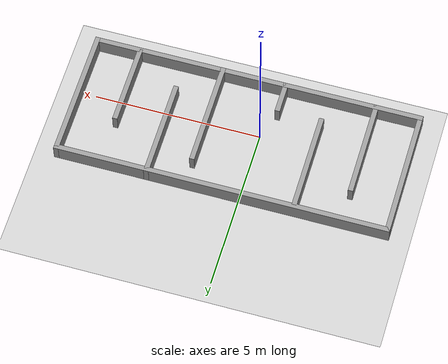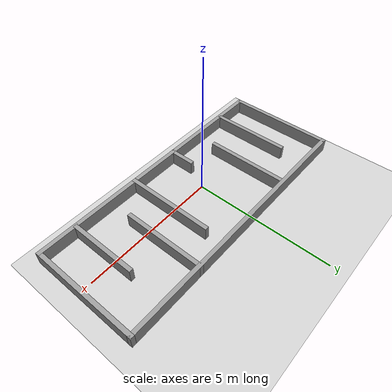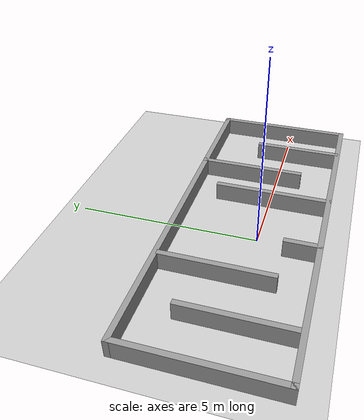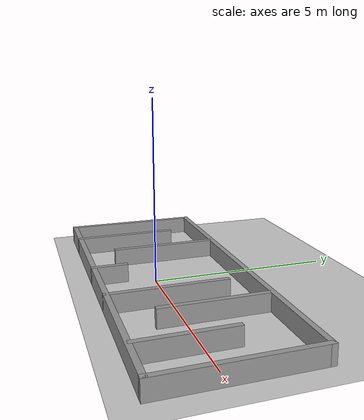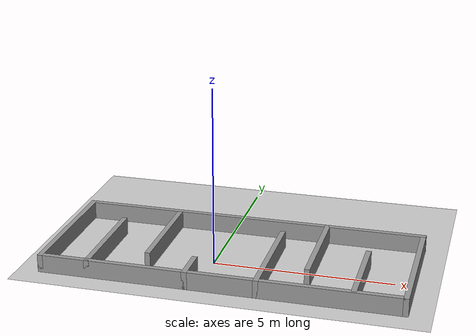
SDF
<sdf version="1.7">
 <world name="default">
  <light name="sun" type="directional">
   <pose>0 0 10 0 -0 0</pose>
   <diffuse>0.8 0.8 0.8 1</diffuse>
   <specular>0.2 0.2 0.2 1</specular>
   <attenuation>
    <range>1000</range>
    <constant>0.9</constant>
    <linear>0.01</linear>
    <quadratic>0.001</quadratic>
   </attenuation>
   <direction>-0.5 0.1 -0.9</direction>
   <spot><inner_angle>0</inner_angle><outer_angle>0</outer_angle><falloff>0</falloff></spot>
  </light>
  <model name="ground_plane">
   <static>1</static>
   <link name="link">
    <collision name="collision">
     <geometry><plane><normal>0 0 1</normal><size>100 100</size></plane></geometry>
     <surface><friction><ode><mu>100</mu><mu2>50</mu2></ode></friction></surface>
    </collision>
    <visual name="visual">
     <cast_shadows>0</cast_shadows>
     <geometry><plane><normal>0 0 1</normal><size>100 100</size></plane></geometry>
     <material>
      <script><uri>file://media/materials/scripts/gazebo.material</uri><name>Gazebo/Grey</name></script>
     </material>
    </visual>
   </link>
  </model>
  <gravity>0 0 -9.8</gravity>
  <magnetic_field>6e-06 2.3e-05 -4.2e-05</magnetic_field>
  <atmosphere type="adiabatic"/>
  <physics type="ode">
   <max_step_size>0.001</max_step_size>
   <real_time_factor>1</real_time_factor>
   <real_time_update_rate>1000</real_time_update_rate>
  </physics>
  <scene><ambient>0.4 0.4 0.4 1</ambient><background>0.7 0.7 0.7 1</background><shadows>1</shadows></scene>
  <audio><device>default</device></audio>
  <spherical_coordinates>
   <surface_model>EARTH_WGS84</surface_model>
   <latitude_deg>0</latitude_deg>
   <longitude_deg>0</longitude_deg>
   <elevation>0</elevation>
   <heading_deg>0</heading_deg>
  </spherical_coordinates>
  <model name="maze">
   <pose>0.543355 0.628898 0 0 -0 0</pose>
   <link name="Wall_0">
    <collision name="Wall_0_Collision">
     <geometry><box><size>4 0.15 0.5</size></box></geometry>
     <pose>0 0 0.25 0 -0 0</pose>
    </collision>
    <visual name="Wall_0_Visual">
     <pose>0 0 0.25 0 -0 0</pose>
     <geometry><box><size>4 0.15 0.5</size></box></geometry>
     <material>
      <script><uri>file://media/materials/scripts/gazebo.material</uri><name>Gazebo/Grey</name></script>
      <ambient>1 1 1 1</ambient>
     </material>
     <meta><layer>0</layer></meta>
    </visual>
    <pose>-4.925 -0.3425 0 0 -0 -1.5708</pose>
   </link>
   <link name="Wall_1">
    <collision name="Wall_1_Collision">
     <geometry><box><size>10 0.15 0.5</size></box></geometry>
     <pose>0 0 0.25 0 -0 0</pose>
    </collision>
    <visual name="Wall_1_Visual">
     <pose>0 0 0.25 0 -0 0</pose>
     <geometry><box><size>10 0.15 0.5</size></box></geometry>
     <material>
      <script><uri>file://media/materials/scripts/gazebo.material</uri><name>Gazebo/Grey</name></script>
      <ambient>1 1 1 1</ambient>
     </material>
     <meta><layer>0</layer></meta>
    </visual>
    <pose>-0 -2.2675 0 0 -0 0</pose>
   </link>
   <link name="Wall_10">
    <collision name="Wall_10_Collision">
     <geometry><box><size>2.5 0.15 0.5</size></box></geometry>
     <pose>0 0 0.25 0 -0 0</pose>
    </collision>
    <visual name="Wall_10_Visual">
     <pose>0 0 0.25 0 -0 0</pose>
     <geometry><box><size>2.5 0.15 0.5</size></box></geometry>
     <material>
      <script><uri>file://media/materials/scripts/gazebo.material</uri><name>Gazebo/Grey</name></script>
      <ambient>1 1 1 1</ambient>
     </material>
     <meta><layer>0</layer></meta>
    </visual>
    <pose>3.595 -1.0325 0 0 -0 1.5708</pose>
   </link>
   <link name="Wall_12">
    <collision name="Wall_12_Collision">
     <geometry><box><size>3 0.15 0.5</size></box></geometry>
     <pose>0 0 0.25 0 -0 0</pose>
    </collision>
    <visual name="Wall_12_Visual">
     <pose>0 0 0.25 0 -0 0</pose>
     <geometry><box><size>3 0.15 0.5</size></box></geometry>
     <material>
      <script><uri>file://media/materials/scripts/gazebo.material</uri><name>Gazebo/Grey</name></script>
      <ambient>1 1 1 1</ambient>
     </material>
     <meta><layer>0</layer></meta>
    </visual>
    <pose>2.205 0.1575 0 0 -0 -1.5708</pose>
   </link>
   <link name="Wall_14">
    <collision name="Wall_14_Collision">
     <geometry><box><size>3.25 0.15 0.5</size></box></geometry>
     <pose>0 0 0.25 0 -0 0</pose>
    </collision>
    <visual name="Wall_14_Visual">
     <pose>0 0 0.25 0 -0 0</pose>
     <geometry><box><size>3.25 0.15 0.5</size></box></geometry>
     <material>
      <script><uri>file://media/materials/scripts/gazebo.material</uri><name>Gazebo/Grey</name></script>
      <ambient>1 1 1 1</ambient>
     </material>
     <meta><layer>0</layer></meta>
    </visual>
    <pose>1.055 -0.7175 0 0 -0 1.5708</pose>
   </link>
   <link name="Wall_18">
    <collision name="Wall_18_Collision">
     <geometry><box><size>1 0.15 0.5</size></box></geometry>
     <pose>0 0 0.25 0 -0 0</pose>
    </collision>
    <visual name="Wall_18_Visual">
     <pose>0 0 0.25 0 -0 0</pose>
     <geometry><box><size>1 0.15 0.5</size></box></geometry>
     <material>
      <script><uri>file://media/materials/scripts/gazebo.material</uri><name>Gazebo/Grey</name></script>
      <ambient>1 1 1 1</ambient>
     </material>
     <meta><layer>0</layer></meta>
    </visual>
    <pose>-0.865 -1.8425 0 0 -0 1.5708</pose>
   </link>
   <link name="Wall_2">
    <collision name="Wall_2_Collision">
     <geometry><box><size>4 0.15 0.5</size></box></geometry>
     <pose>0 0 0.25 0 -0 0</pose>
    </collision>
    <visual name="Wall_2_Visual">
     <pose>0 0 0.25 0 -0 0</pose>
     <geometry><box><size>4 0.15 0.5</size></box></geometry>
     <material>
      <script><uri>file://media/materials/scripts/gazebo.material</uri><name>Gazebo/Grey</name></script>
      <ambient>1 1 1 1</ambient>
     </material>
     <meta><layer>0</layer></meta>
    </visual>
    <pose>4.925 -0.3425 0 0 -0 1.5708</pose>
   </link>
   <link name="Wall_3">
    <collision name="Wall_3_Collision">
     <geometry><box><size>10 0.15 0.5</size></box></geometry>
     <pose>0 0 0.25 0 -0 0</pose>
    </collision>
    <visual name="Wall_3_Visual">
     <pose>0 0 0.25 0 -0 0</pose>
     <geometry><box><size>10 0.15 0.5</size></box></geometry>
     <material>
      <script><uri>file://media/materials/scripts/gazebo.material</uri><name>Gazebo/Grey</name></script>
      <ambient>1 1 1 1</ambient>
     </material>
     <meta><layer>0</layer></meta>
    </visual>
    <pose>-0 1.5825 0 0 -0 3.14159</pose>
   </link>
   <link name="Wall_5">
    <collision name="Wall_5_Collision">
     <geometry><box><size>3 0.15 0.5</size></box></geometry>
     <pose>0 0 0.25 0 -0 0</pose>
    </collision>
    <visual name="Wall_5_Visual">
     <pose>0 0 0.25 0 -0 0</pose>
     <geometry><box><size>3 0.15 0.5</size></box></geometry>
     <material>
      <script><uri>file://media/materials/scripts/gazebo.material</uri><name>Gazebo/Grey</name></script>
      <ambient>1 1 1 1</ambient>
     </material>
     <meta><layer>0</layer></meta>
    </visual>
    <pose>-3.595 -0.8425 0 0 -0 1.5708</pose>
   </link>
   <link name="Wall_7">
    <collision name="Wall_7_Collision">
     <geometry><box><size>3 0.15 0.5</size></box></geometry>
     <pose>0 0 0.25 0 -0 0</pose>
    </collision>
    <visual name="Wall_7_Visual">
     <pose>0 0 0.25 0 -0 0</pose>
     <geometry><box><size>3 0.15 0.5</size></box></geometry>
     <material>
      <script><uri>file://media/materials/scripts/gazebo.material</uri><name>Gazebo/Grey</name></script>
      <ambient>1 1 1 1</ambient>
     </material>
     <meta><layer>0</layer></meta>
    </visual>
    <pose>-2.175 0.0475 0 0 -0 -1.5708</pose>
   </link>
   <static>1</static>
  </model>
 </world>
</sdf>
